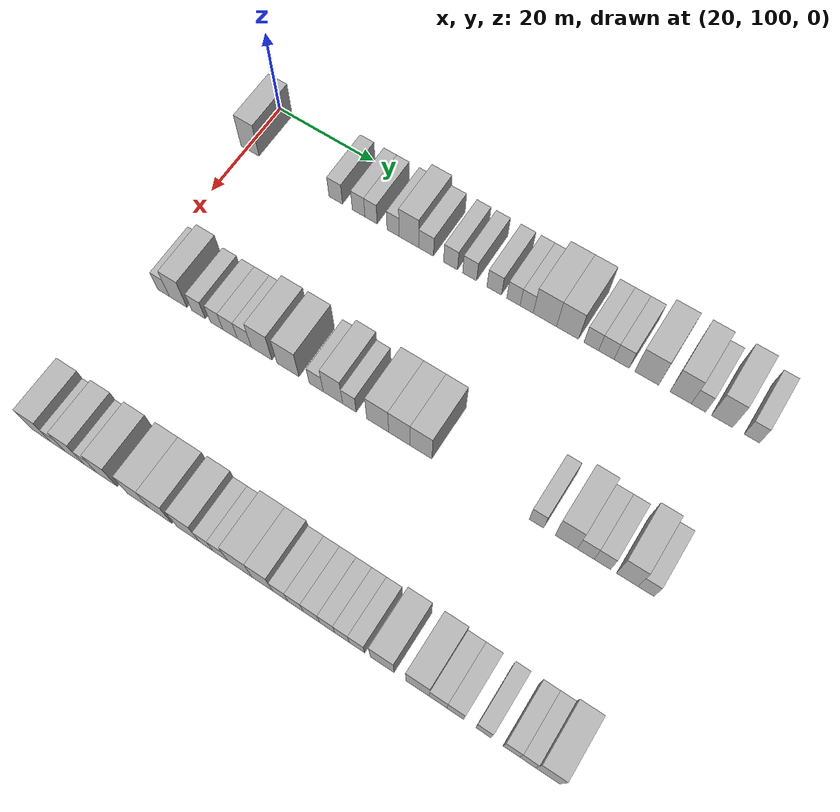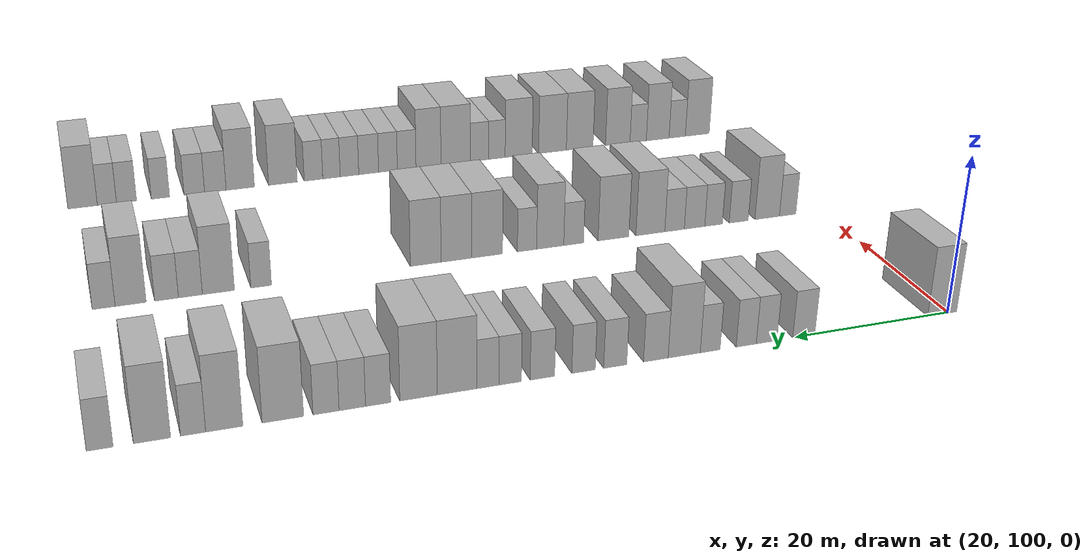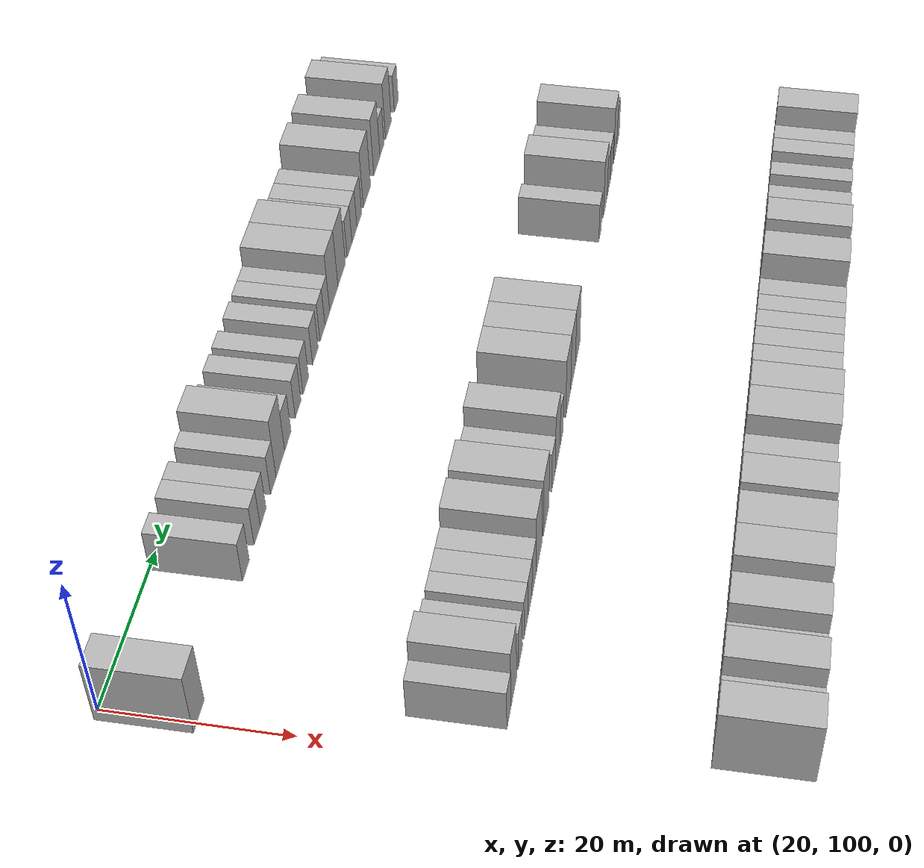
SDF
<sdf version="1.6">
 <world name="default">
  <model name="building_100">
   <static>1</static>
   <pose>25.0000 100.7992 0 0.000000 0.000000 0.000000</pose>
   <link name="link">
    <pose>0 0 4.50 0 0 0</pose>
    <collision name="collision"><geometry><box><size>10.0000 3.8838 9.0000</size></box></geometry></collision>
    <visual name="visual">
     <cast_shadows>0</cast_shadows>
     <geometry><box><size>10.0000 3.8838 9.0000</size></box></geometry>
     <material>
      <script>
       <uri>model://HANNAS_wall/materials/scripts</uri>
       <uri>model://HANNAS_wall/materials/textures</uri>
       <name>vrc/HANNAS_wall</name>
      </script>
     </material>
    </visual>
   </link>
  </model>
  <model name="building_101">
   <static>1</static>
   <pose>25.0000 118.9453 0 0.000000 0.000000 0.000000</pose>
   <link name="link">
    <pose>0 0 3.00 0 0 0</pose>
    <collision name="collision"><geometry><box><size>10.0000 2.8028 6.0000</size></box></geometry></collision>
    <visual name="visual">
     <cast_shadows>0</cast_shadows>
     <geometry><box><size>10.0000 2.8028 6.0000</size></box></geometry>
     <material>
      <script>
       <uri>model://HANNAS_wall/materials/scripts</uri>
       <uri>model://HANNAS_wall/materials/textures</uri>
       <name>vrc/HANNAS_wall</name>
      </script>
     </material>
    </visual>
   </link>
  </model>
  <model name="building_102">
   <static>1</static>
   <pose>25.0000 123.6450 0 0.000000 0.000000 0.000000</pose>
   <link name="link">
    <pose>0 0 3.00 0 0 0</pose>
    <collision name="collision"><geometry><box><size>10.0000 2.5965 6.0000</size></box></geometry></collision>
    <visual name="visual">
     <cast_shadows>0</cast_shadows>
     <geometry><box><size>10.0000 2.5965 6.0000</size></box></geometry>
     <material>
      <script>
       <uri>model://HANNAS_wall/materials/scripts</uri>
       <uri>model://HANNAS_wall/materials/textures</uri>
       <name>vrc/HANNAS_wall</name>
      </script>
     </material>
    </visual>
   </link>
  </model>
  <model name="building_103">
   <static>1</static>
   <pose>25.0000 126.1950 0 0.000000 0.000000 0.000000</pose>
   <link name="link">
    <pose>0 0 3.00 0 0 0</pose>
    <collision name="collision"><geometry><box><size>10.0000 2.5036 6.0000</size></box></geometry></collision>
    <visual name="visual">
     <cast_shadows>0</cast_shadows>
     <geometry><box><size>10.0000 2.5036 6.0000</size></box></geometry>
     <material>
      <script>
       <uri>model://HANNAS_wall/materials/scripts</uri>
       <uri>model://HANNAS_wall/materials/textures</uri>
       <name>vrc/HANNAS_wall</name>
      </script>
     </material>
    </visual>
   </link>
  </model>
  <model name="building_104">
   <static>1</static>
   <pose>25.0000 130.6637 0 0.000000 0.000000 0.000000</pose>
   <link name="link">
    <pose>0 0 3.00 0 0 0</pose>
    <collision name="collision"><geometry><box><size>10.0000 2.4337 6.0000</size></box></geometry></collision>
    <visual name="visual">
     <cast_shadows>0</cast_shadows>
     <geometry><box><size>10.0000 2.4337 6.0000</size></box></geometry>
     <material>
      <script>
       <uri>model://HANNAS_wall/materials/scripts</uri>
       <uri>model://HANNAS_wall/materials/textures</uri>
       <name>vrc/HANNAS_wall</name>
      </script>
     </material>
    </visual>
   </link>
  </model>
  <model name="building_105">
   <static>1</static>
   <pose>25.0000 133.8377 0 0.000000 0.000000 0.000000</pose>
   <link name="link">
    <pose>0 0 4.50 0 0 0</pose>
    <collision name="collision"><geometry><box><size>10.0000 3.9144 9.0000</size></box></geometry></collision>
    <visual name="visual">
     <cast_shadows>0</cast_shadows>
     <geometry><box><size>10.0000 3.9144 9.0000</size></box></geometry>
     <material>
      <script>
       <uri>model://HANNAS_wall/materials/scripts</uri>
       <uri>model://HANNAS_wall/materials/textures</uri>
       <name>vrc/HANNAS_wall</name>
      </script>
     </material>
    </visual>
   </link>
  </model>
  <model name="building_106">
   <static>1</static>
   <pose>25.0000 137.2740 0 0.000000 0.000000 0.000000</pose>
   <link name="link">
    <pose>0 0 3.00 0 0 0</pose>
    <collision name="collision"><geometry><box><size>10.0000 2.9583 6.0000</size></box></geometry></collision>
    <visual name="visual">
     <cast_shadows>0</cast_shadows>
     <geometry><box><size>10.0000 2.9583 6.0000</size></box></geometry>
     <material>
      <script>
       <uri>model://HANNAS_wall/materials/scripts</uri>
       <uri>model://HANNAS_wall/materials/textures</uri>
       <name>vrc/HANNAS_wall</name>
      </script>
     </material>
    </visual>
   </link>
  </model>
  <model name="building_107">
   <static>1</static>
   <pose>25.0000 142.1215 0 0.000000 0.000000 0.000000</pose>
   <link name="link">
    <pose>0 0 3.00 0 0 0</pose>
    <collision name="collision"><geometry><box><size>10.0000 2.7368 6.0000</size></box></geometry></collision>
    <visual name="visual">
     <cast_shadows>0</cast_shadows>
     <geometry><box><size>10.0000 2.7368 6.0000</size></box></geometry>
     <material>
      <script>
       <uri>model://HANNAS_wall/materials/scripts</uri>
       <uri>model://HANNAS_wall/materials/textures</uri>
       <name>vrc/HANNAS_wall</name>
      </script>
     </material>
    </visual>
   </link>
  </model>
  <model name="building_108">
   <static>1</static>
   <pose>25.0000 145.8568 0 0.000000 0.000000 0.000000</pose>
   <link name="link">
    <pose>0 0 3.00 0 0 0</pose>
    <collision name="collision"><geometry><box><size>10.0000 2.7338 6.0000</size></box></geometry></collision>
    <visual name="visual">
     <cast_shadows>0</cast_shadows>
     <geometry><box><size>10.0000 2.7338 6.0000</size></box></geometry>
     <material>
      <script>
       <uri>model://HANNAS_wall/materials/scripts</uri>
       <uri>model://HANNAS_wall/materials/textures</uri>
       <name>vrc/HANNAS_wall</name>
      </script>
     </material>
    </visual>
   </link>
  </model>
  <model name="building_109">
   <static>1</static>
   <pose>25.0000 150.6333 0 0.000000 0.000000 0.000000</pose>
   <link name="link">
    <pose>0 0 3.00 0 0 0</pose>
    <collision name="collision"><geometry><box><size>10.0000 2.8192 6.0000</size></box></geometry></collision>
    <visual name="visual">
     <cast_shadows>0</cast_shadows>
     <geometry><box><size>10.0000 2.8192 6.0000</size></box></geometry>
     <material>
      <script>
       <uri>model://HANNAS_wall/materials/scripts</uri>
       <uri>model://HANNAS_wall/materials/textures</uri>
       <name>vrc/HANNAS_wall</name>
      </script>
     </material>
    </visual>
   </link>
  </model>
  <model name="building_110">
   <static>1</static>
   <pose>25.0000 154.3250 0 0.000000 0.000000 0.000000</pose>
   <link name="link">
    <pose>0 0 3.00 0 0 0</pose>
    <collision name="collision"><geometry><box><size>10.0000 2.5641 6.0000</size></box></geometry></collision>
    <visual name="visual">
     <cast_shadows>0</cast_shadows>
     <geometry><box><size>10.0000 2.5641 6.0000</size></box></geometry>
     <material>
      <script>
       <uri>model://HANNAS_wall/materials/scripts</uri>
       <uri>model://HANNAS_wall/materials/textures</uri>
       <name>vrc/HANNAS_wall</name>
      </script>
     </material>
    </visual>
   </link>
  </model>
  <model name="building_111">
   <static>1</static>
   <pose>25.0000 156.8518 0 0.000000 0.000000 0.000000</pose>
   <link name="link">
    <pose>0 0 3.00 0 0 0</pose>
    <collision name="collision"><geometry><box><size>10.0000 2.4895 6.0000</size></box></geometry></collision>
    <visual name="visual">
     <cast_shadows>0</cast_shadows>
     <geometry><box><size>10.0000 2.4895 6.0000</size></box></geometry>
     <material>
      <script>
       <uri>model://HANNAS_wall/materials/scripts</uri>
       <uri>model://HANNAS_wall/materials/textures</uri>
       <name>vrc/HANNAS_wall</name>
      </script>
     </material>
    </visual>
   </link>
  </model>
  <model name="building_112">
   <static>1</static>
   <pose>25.0000 160.3032 0 0.000000 0.000000 0.000000</pose>
   <link name="link">
    <pose>0 0 4.50 0 0 0</pose>
    <collision name="collision"><geometry><box><size>10.0000 4.4132 9.0000</size></box></geometry></collision>
    <visual name="visual">
     <cast_shadows>0</cast_shadows>
     <geometry><box><size>10.0000 4.4132 9.0000</size></box></geometry>
     <material>
      <script>
       <uri>model://HANNAS_wall/materials/scripts</uri>
       <uri>model://HANNAS_wall/materials/textures</uri>
       <name>vrc/HANNAS_wall</name>
      </script>
     </material>
    </visual>
   </link>
  </model>
  <model name="building_113">
   <static>1</static>
   <pose>25.0000 164.5713 0 0.000000 0.000000 0.000000</pose>
   <link name="link">
    <pose>0 0 4.50 0 0 0</pose>
    <collision name="collision"><geometry><box><size>10.0000 4.1232 9.0000</size></box></geometry></collision>
    <visual name="visual">
     <cast_shadows>0</cast_shadows>
     <geometry><box><size>10.0000 4.1232 9.0000</size></box></geometry>
     <material>
      <script>
       <uri>model://HANNAS_wall/materials/scripts</uri>
       <uri>model://HANNAS_wall/materials/textures</uri>
       <name>vrc/HANNAS_wall</name>
      </script>
     </material>
    </visual>
   </link>
  </model>
  <model name="building_114">
   <static>1</static>
   <pose>25.0000 168.9948 0 0.000000 0.000000 0.000000</pose>
   <link name="link">
    <pose>0 0 3.00 0 0 0</pose>
    <collision name="collision"><geometry><box><size>10.0000 2.7237 6.0000</size></box></geometry></collision>
    <visual name="visual">
     <cast_shadows>0</cast_shadows>
     <geometry><box><size>10.0000 2.7237 6.0000</size></box></geometry>
     <material>
      <script>
       <uri>model://HANNAS_wall/materials/scripts</uri>
       <uri>model://HANNAS_wall/materials/textures</uri>
       <name>vrc/HANNAS_wall</name>
      </script>
     </material>
    </visual>
   </link>
  </model>
  <model name="building_115">
   <static>1</static>
   <pose>25.0000 171.7751 0 0.000000 0.000000 0.000000</pose>
   <link name="link">
    <pose>0 0 3.00 0 0 0</pose>
    <collision name="collision"><geometry><box><size>10.0000 2.8369 6.0000</size></box></geometry></collision>
    <visual name="visual">
     <cast_shadows>0</cast_shadows>
     <geometry><box><size>10.0000 2.8369 6.0000</size></box></geometry>
     <material>
      <script>
       <uri>model://HANNAS_wall/materials/scripts</uri>
       <uri>model://HANNAS_wall/materials/textures</uri>
       <name>vrc/HANNAS_wall</name>
      </script>
     </material>
    </visual>
   </link>
  </model>
  <model name="building_116">
   <static>1</static>
   <pose>25.0000 174.5804 0 0.000000 0.000000 0.000000</pose>
   <link name="link">
    <pose>0 0 3.00 0 0 0</pose>
    <collision name="collision"><geometry><box><size>10.0000 2.7737 6.0000</size></box></geometry></collision>
    <visual name="visual">
     <cast_shadows>0</cast_shadows>
     <geometry><box><size>10.0000 2.7737 6.0000</size></box></geometry>
     <material>
      <script>
       <uri>model://HANNAS_wall/materials/scripts</uri>
       <uri>model://HANNAS_wall/materials/textures</uri>
       <name>vrc/HANNAS_wall</name>
      </script>
     </material>
    </visual>
   </link>
  </model>
  <model name="building_117">
   <static>1</static>
   <pose>25.0000 179.1370 0 0.000000 0.000000 0.000000</pose>
   <link name="link">
    <pose>0 0 4.50 0 0 0</pose>
    <collision name="collision"><geometry><box><size>10.0000 4.3395 9.0000</size></box></geometry></collision>
    <visual name="visual">
     <cast_shadows>0</cast_shadows>
     <geometry><box><size>10.0000 4.3395 9.0000</size></box></geometry>
     <material>
      <script>
       <uri>model://HANNAS_wall/materials/scripts</uri>
       <uri>model://HANNAS_wall/materials/textures</uri>
       <name>vrc/HANNAS_wall</name>
      </script>
     </material>
    </visual>
   </link>
  </model>
  <model name="building_118">
   <static>1</static>
   <pose>25.0000 185.2125 0 0.000000 0.000000 0.000000</pose>
   <link name="link">
    <pose>0 0 4.50 0 0 0</pose>
    <collision name="collision"><geometry><box><size>10.0000 3.8114 9.0000</size></box></geometry></collision>
    <visual name="visual">
     <cast_shadows>0</cast_shadows>
     <geometry><box><size>10.0000 3.8114 9.0000</size></box></geometry>
     <material>
      <script>
       <uri>model://HANNAS_wall/materials/scripts</uri>
       <uri>model://HANNAS_wall/materials/textures</uri>
       <name>vrc/HANNAS_wall</name>
      </script>
     </material>
    </visual>
   </link>
  </model>
  <model name="building_119">
   <static>1</static>
   <pose>25.0000 188.3955 0 0.000000 0.000000 0.000000</pose>
   <link name="link">
    <pose>0 0 3.00 0 0 0</pose>
    <collision name="collision"><geometry><box><size>10.0000 2.5547 6.0000</size></box></geometry></collision>
    <visual name="visual">
     <cast_shadows>0</cast_shadows>
     <geometry><box><size>10.0000 2.5547 6.0000</size></box></geometry>
     <material>
      <script>
       <uri>model://HANNAS_wall/materials/scripts</uri>
       <uri>model://HANNAS_wall/materials/textures</uri>
       <name>vrc/HANNAS_wall</name>
      </script>
     </material>
    </visual>
   </link>
  </model>
  <model name="building_120">
   <static>1</static>
   <pose>25.0000 192.5341 0 0.000000 0.000000 0.000000</pose>
   <link name="link">
    <pose>0 0 4.50 0 0 0</pose>
    <collision name="collision"><geometry><box><size>10.0000 3.7225 9.0000</size></box></geometry></collision>
    <visual name="visual">
     <cast_shadows>0</cast_shadows>
     <geometry><box><size>10.0000 3.7225 9.0000</size></box></geometry>
     <material>
      <script>
       <uri>model://HANNAS_wall/materials/scripts</uri>
       <uri>model://HANNAS_wall/materials/textures</uri>
       <name>vrc/HANNAS_wall</name>
      </script>
     </material>
    </visual>
   </link>
  </model>
  <model name="building_121">
   <static>1</static>
   <pose>25.0000 197.7172 0 0.000000 0.000000 0.000000</pose>
   <link name="link">
    <pose>0 0 3.00 0 0 0</pose>
    <collision name="collision"><geometry><box><size>10.0000 2.6436 6.0000</size></box></geometry></collision>
    <visual name="visual">
     <cast_shadows>0</cast_shadows>
     <geometry><box><size>10.0000 2.6436 6.0000</size></box></geometry>
     <material>
      <script>
       <uri>model://HANNAS_wall/materials/scripts</uri>
       <uri>model://HANNAS_wall/materials/textures</uri>
       <name>vrc/HANNAS_wall</name>
      </script>
     </material>
    </visual>
   </link>
  </model>
  <model name="building_223">
   <static>1</static>
   <pose>55.0000 105.1347 0 0.000000 0.000000 0.000000</pose>
   <link name="link">
    <pose>0 0 3.00 0 0 0</pose>
    <collision name="collision"><geometry><box><size>10.0000 2.4431 6.0000</size></box></geometry></collision>
    <visual name="visual">
     <cast_shadows>0</cast_shadows>
     <geometry><box><size>10.0000 2.4431 6.0000</size></box></geometry>
     <material>
      <script>
       <uri>model://HANNAS_wall/materials/scripts</uri>
       <uri>model://HANNAS_wall/materials/textures</uri>
       <name>vrc/HANNAS_wall</name>
      </script>
     </material>
    </visual>
   </link>
  </model>
  <model name="building_224">
   <static>1</static>
   <pose>55.0000 108.1707 0 0.000000 0.000000 0.000000</pose>
   <link name="link">
    <pose>0 0 4.50 0 0 0</pose>
    <collision name="collision"><geometry><box><size>10.0000 3.6289 9.0000</size></box></geometry></collision>
    <visual name="visual">
     <cast_shadows>0</cast_shadows>
     <geometry><box><size>10.0000 3.6289 9.0000</size></box></geometry>
     <material>
      <script>
       <uri>model://HANNAS_wall/materials/scripts</uri>
       <uri>model://HANNAS_wall/materials/textures</uri>
       <name>vrc/HANNAS_wall</name>
      </script>
     </material>
    </visual>
   </link>
  </model>
  <model name="building_225">
   <static>1</static>
   <pose>55.0000 112.3781 0 0.000000 0.000000 0.000000</pose>
   <link name="link">
    <pose>0 0 3.00 0 0 0</pose>
    <collision name="collision"><geometry><box><size>10.0000 2.7859 6.0000</size></box></geometry></collision>
    <visual name="visual">
     <cast_shadows>0</cast_shadows>
     <geometry><box><size>10.0000 2.7859 6.0000</size></box></geometry>
     <material>
      <script>
       <uri>model://HANNAS_wall/materials/scripts</uri>
       <uri>model://HANNAS_wall/materials/textures</uri>
       <name>vrc/HANNAS_wall</name>
      </script>
     </material>
    </visual>
   </link>
  </model>
  <model name="building_226">
   <static>1</static>
   <pose>55.0000 116.0443 0 0.000000 0.000000 0.000000</pose>
   <link name="link">
    <pose>0 0 3.00 0 0 0</pose>
    <collision name="collision"><geometry><box><size>10.0000 2.5465 6.0000</size></box></geometry></collision>
    <visual name="visual">
     <cast_shadows>0</cast_shadows>
     <geometry><box><size>10.0000 2.5465 6.0000</size></box></geometry>
     <material>
      <script>
       <uri>model://HANNAS_wall/materials/scripts</uri>
       <uri>model://HANNAS_wall/materials/textures</uri>
       <name>vrc/HANNAS_wall</name>
      </script>
     </material>
    </visual>
   </link>
  </model>
  <model name="building_227">
   <static>1</static>
   <pose>55.0000 118.7913 0 0.000000 0.000000 0.000000</pose>
   <link name="link">
    <pose>0 0 3.00 0 0 0</pose>
    <collision name="collision"><geometry><box><size>10.0000 2.9474 6.0000</size></box></geometry></collision>
    <visual name="visual">
     <cast_shadows>0</cast_shadows>
     <geometry><box><size>10.0000 2.9474 6.0000</size></box></geometry>
     <material>
      <script>
       <uri>model://HANNAS_wall/materials/scripts</uri>
       <uri>model://HANNAS_wall/materials/textures</uri>
       <name>vrc/HANNAS_wall</name>
      </script>
     </material>
    </visual>
   </link>
  </model>
  <model name="building_228">
   <static>1</static>
   <pose>55.0000 121.6627 0 0.000000 0.000000 0.000000</pose>
   <link name="link">
    <pose>0 0 3.00 0 0 0</pose>
    <collision name="collision"><geometry><box><size>10.0000 2.7953 6.0000</size></box></geometry></collision>
    <visual name="visual">
     <cast_shadows>0</cast_shadows>
     <geometry><box><size>10.0000 2.7953 6.0000</size></box></geometry>
     <material>
      <script>
       <uri>model://HANNAS_wall/materials/scripts</uri>
       <uri>model://HANNAS_wall/materials/textures</uri>
       <name>vrc/HANNAS_wall</name>
      </script>
     </material>
    </visual>
   </link>
  </model>
  <model name="building_229">
   <static>1</static>
   <pose>55.0000 125.1063 0 0.000000 0.000000 0.000000</pose>
   <link name="link">
    <pose>0 0 4.50 0 0 0</pose>
    <collision name="collision"><geometry><box><size>10.0000 4.0919 9.0000</size></box></geometry></collision>
    <visual name="visual">
     <cast_shadows>0</cast_shadows>
     <geometry><box><size>10.0000 4.0919 9.0000</size></box></geometry>
     <material>
      <script>
       <uri>model://HANNAS_wall/materials/scripts</uri>
       <uri>model://HANNAS_wall/materials/textures</uri>
       <name>vrc/HANNAS_wall</name>
      </script>
     </material>
    </visual>
   </link>
  </model>
  <model name="building_230">
   <static>1</static>
   <pose>55.0000 130.3041 0 0.000000 0.000000 0.000000</pose>
   <link name="link">
    <pose>0 0 4.50 0 0 0</pose>
    <collision name="collision"><geometry><box><size>10.0000 4.3039 9.0000</size></box></geometry></collision>
    <visual name="visual">
     <cast_shadows>0</cast_shadows>
     <geometry><box><size>10.0000 4.3039 9.0000</size></box></geometry>
     <material>
      <script>
       <uri>model://HANNAS_wall/materials/scripts</uri>
       <uri>model://HANNAS_wall/materials/textures</uri>
       <name>vrc/HANNAS_wall</name>
      </script>
     </material>
    </visual>
   </link>
  </model>
  <model name="building_231">
   <static>1</static>
   <pose>55.0000 135.8224 0 0.000000 0.000000 0.000000</pose>
   <link name="link">
    <pose>0 0 3.00 0 0 0</pose>
    <collision name="collision"><geometry><box><size>10.0000 2.7327 6.0000</size></box></geometry></collision>
    <visual name="visual">
     <cast_shadows>0</cast_shadows>
     <geometry><box><size>10.0000 2.7327 6.0000</size></box></geometry>
     <material>
      <script>
       <uri>model://HANNAS_wall/materials/scripts</uri>
       <uri>model://HANNAS_wall/materials/textures</uri>
       <name>vrc/HANNAS_wall</name>
      </script>
     </material>
    </visual>
   </link>
  </model>
  <model name="building_232">
   <static>1</static>
   <pose>55.0000 139.0398 0 0.000000 0.000000 0.000000</pose>
   <link name="link">
    <pose>0 0 4.50 0 0 0</pose>
    <collision name="collision"><geometry><box><size>10.0000 3.7021 9.0000</size></box></geometry></collision>
    <visual name="visual">
     <cast_shadows>0</cast_shadows>
     <geometry><box><size>10.0000 3.7021 9.0000</size></box></geometry>
     <material>
      <script>
       <uri>model://HANNAS_wall/materials/scripts</uri>
       <uri>model://HANNAS_wall/materials/textures</uri>
       <name>vrc/HANNAS_wall</name>
      </script>
     </material>
    </visual>
   </link>
  </model>
  <model name="building_233">
   <static>1</static>
   <pose>55.0000 142.1880 0 0.000000 0.000000 0.000000</pose>
   <link name="link">
    <pose>0 0 3.00 0 0 0</pose>
    <collision name="collision"><geometry><box><size>10.0000 2.5942 6.0000</size></box></geometry></collision>
    <visual name="visual">
     <cast_shadows>0</cast_shadows>
     <geometry><box><size>10.0000 2.5942 6.0000</size></box></geometry>
     <material>
      <script>
       <uri>model://HANNAS_wall/materials/scripts</uri>
       <uri>model://HANNAS_wall/materials/textures</uri>
       <name>vrc/HANNAS_wall</name>
      </script>
     </material>
    </visual>
   </link>
  </model>
  <model name="building_234">
   <static>1</static>
   <pose>55.0000 147.5506 0 0.000000 0.000000 0.000000</pose>
   <link name="link">
    <pose>0 0 4.50 0 0 0</pose>
    <collision name="collision"><geometry><box><size>10.0000 4.1310 9.0000</size></box></geometry></collision>
    <visual name="visual">
     <cast_shadows>0</cast_shadows>
     <geometry><box><size>10.0000 4.1310 9.0000</size></box></geometry>
     <material>
      <script>
       <uri>model://HANNAS_wall/materials/scripts</uri>
       <uri>model://HANNAS_wall/materials/textures</uri>
       <name>vrc/HANNAS_wall</name>
      </script>
     </material>
    </visual>
   </link>
  </model>
  <model name="building_235">
   <static>1</static>
   <pose>55.0000 151.6211 0 0.000000 0.000000 0.000000</pose>
   <link name="link">
    <pose>0 0 4.50 0 0 0</pose>
    <collision name="collision"><geometry><box><size>10.0000 4.0101 9.0000</size></box></geometry></collision>
    <visual name="visual">
     <cast_shadows>0</cast_shadows>
     <geometry><box><size>10.0000 4.0101 9.0000</size></box></geometry>
     <material>
      <script>
       <uri>model://HANNAS_wall/materials/scripts</uri>
       <uri>model://HANNAS_wall/materials/textures</uri>
       <name>vrc/HANNAS_wall</name>
      </script>
     </material>
    </visual>
   </link>
  </model>
  <model name="building_236">
   <static>1</static>
   <pose>55.0000 155.6269 0 0.000000 0.000000 0.000000</pose>
   <link name="link">
    <pose>0 0 4.50 0 0 0</pose>
    <collision name="collision"><geometry><box><size>10.0000 4.0014 9.0000</size></box></geometry></collision>
    <visual name="visual">
     <cast_shadows>0</cast_shadows>
     <geometry><box><size>10.0000 4.0014 9.0000</size></box></geometry>
     <material>
      <script>
       <uri>model://HANNAS_wall/materials/scripts</uri>
       <uri>model://HANNAS_wall/materials/textures</uri>
       <name>vrc/HANNAS_wall</name>
      </script>
     </material>
    </visual>
   </link>
  </model>
  <model name="building_237">
   <static>1</static>
   <pose>55.0000 176.4180 0 0.000000 0.000000 0.000000</pose>
   <link name="link">
    <pose>0 0 3.00 0 0 0</pose>
    <collision name="collision"><geometry><box><size>10.0000 2.5270 6.0000</size></box></geometry></collision>
    <visual name="visual">
     <cast_shadows>0</cast_shadows>
     <geometry><box><size>10.0000 2.5270 6.0000</size></box></geometry>
     <material>
      <script>
       <uri>model://HANNAS_wall/materials/scripts</uri>
       <uri>model://HANNAS_wall/materials/textures</uri>
       <name>vrc/HANNAS_wall</name>
      </script>
     </material>
    </visual>
   </link>
  </model>
  <model name="building_238">
   <static>1</static>
   <pose>55.0000 181.6133 0 0.000000 0.000000 0.000000</pose>
   <link name="link">
    <pose>0 0 4.50 0 0 0</pose>
    <collision name="collision"><geometry><box><size>10.0000 3.8635 9.0000</size></box></geometry></collision>
    <visual name="visual">
     <cast_shadows>0</cast_shadows>
     <geometry><box><size>10.0000 3.8635 9.0000</size></box></geometry>
     <material>
      <script>
       <uri>model://HANNAS_wall/materials/scripts</uri>
       <uri>model://HANNAS_wall/materials/textures</uri>
       <name>vrc/HANNAS_wall</name>
      </script>
     </material>
    </visual>
   </link>
  </model>
  <model name="building_239">
   <static>1</static>
   <pose>55.0000 184.9808 0 0.000000 0.000000 0.000000</pose>
   <link name="link">
    <pose>0 0 3.00 0 0 0</pose>
    <collision name="collision"><geometry><box><size>10.0000 2.8714 6.0000</size></box></geometry></collision>
    <visual name="visual">
     <cast_shadows>0</cast_shadows>
     <geometry><box><size>10.0000 2.8714 6.0000</size></box></geometry>
     <material>
      <script>
       <uri>model://HANNAS_wall/materials/scripts</uri>
       <uri>model://HANNAS_wall/materials/textures</uri>
       <name>vrc/HANNAS_wall</name>
      </script>
     </material>
    </visual>
   </link>
  </model>
  <model name="building_240">
   <static>1</static>
   <pose>55.0000 187.8262 0 0.000000 0.000000 0.000000</pose>
   <link name="link">
    <pose>0 0 3.00 0 0 0</pose>
    <collision name="collision"><geometry><box><size>10.0000 2.8194 6.0000</size></box></geometry></collision>
    <visual name="visual">
     <cast_shadows>0</cast_shadows>
     <geometry><box><size>10.0000 2.8194 6.0000</size></box></geometry>
     <material>
      <script>
       <uri>model://HANNAS_wall/materials/scripts</uri>
       <uri>model://HANNAS_wall/materials/textures</uri>
       <name>vrc/HANNAS_wall</name>
      </script>
     </material>
    </visual>
   </link>
  </model>
  <model name="building_241">
   <static>1</static>
   <pose>55.0000 192.0515 0 0.000000 0.000000 0.000000</pose>
   <link name="link">
    <pose>0 0 4.50 0 0 0</pose>
    <collision name="collision"><geometry><box><size>10.0000 3.6312 9.0000</size></box></geometry></collision>
    <visual name="visual">
     <cast_shadows>0</cast_shadows>
     <geometry><box><size>10.0000 3.6312 9.0000</size></box></geometry>
     <material>
      <script>
       <uri>model://HANNAS_wall/materials/scripts</uri>
       <uri>model://HANNAS_wall/materials/textures</uri>
       <name>vrc/HANNAS_wall</name>
      </script>
     </material>
    </visual>
   </link>
  </model>
  <model name="building_242">
   <static>1</static>
   <pose>55.0000 195.2023 0 0.000000 0.000000 0.000000</pose>
   <link name="link">
    <pose>0 0 3.00 0 0 0</pose>
    <collision name="collision"><geometry><box><size>10.0000 2.6704 6.0000</size></box></geometry></collision>
    <visual name="visual">
     <cast_shadows>0</cast_shadows>
     <geometry><box><size>10.0000 2.6704 6.0000</size></box></geometry>
     <material>
      <script>
       <uri>model://HANNAS_wall/materials/scripts</uri>
       <uri>model://HANNAS_wall/materials/textures</uri>
       <name>vrc/HANNAS_wall</name>
      </script>
     </material>
    </visual>
   </link>
  </model>
  <model name="building_358">
   <static>1</static>
   <pose>85.0000 104.5652 0 0.000000 0.000000 0.000000</pose>
   <link name="link">
    <pose>0 0 4.50 0 0 0</pose>
    <collision name="collision"><geometry><box><size>10.0000 3.9607 9.0000</size></box></geometry></collision>
    <visual name="visual">
     <cast_shadows>0</cast_shadows>
     <geometry><box><size>10.0000 3.9607 9.0000</size></box></geometry>
     <material>
      <script>
       <uri>model://HANNAS_wall/materials/scripts</uri>
       <uri>model://HANNAS_wall/materials/textures</uri>
       <name>vrc/HANNAS_wall</name>
      </script>
     </material>
    </visual>
   </link>
  </model>
  <model name="building_359">
   <static>1</static>
   <pose>85.0000 107.8893 0 0.000000 0.000000 0.000000</pose>
   <link name="link">
    <pose>0 0 3.00 0 0 0</pose>
    <collision name="collision"><geometry><box><size>10.0000 2.6874 6.0000</size></box></geometry></collision>
    <visual name="visual">
     <cast_shadows>0</cast_shadows>
     <geometry><box><size>10.0000 2.6874 6.0000</size></box></geometry>
     <material>
      <script>
       <uri>model://HANNAS_wall/materials/scripts</uri>
       <uri>model://HANNAS_wall/materials/textures</uri>
       <name>vrc/HANNAS_wall</name>
      </script>
     </material>
    </visual>
   </link>
  </model>
  <model name="building_360">
   <static>1</static>
   <pose>85.0000 111.0969 0 0.000000 0.000000 0.000000</pose>
   <link name="link">
    <pose>0 0 4.50 0 0 0</pose>
    <collision name="collision"><geometry><box><size>10.0000 3.7279 9.0000</size></box></geometry></collision>
    <visual name="visual">
     <cast_shadows>0</cast_shadows>
     <geometry><box><size>10.0000 3.7279 9.0000</size></box></geometry>
     <material>
      <script>
       <uri>model://HANNAS_wall/materials/scripts</uri>
       <uri>model://HANNAS_wall/materials/textures</uri>
       <name>vrc/HANNAS_wall</name>
      </script>
     </material>
    </visual>
   </link>
  </model>
  <model name="building_361">
   <static>1</static>
   <pose>85.0000 114.2854 0 0.000000 0.000000 0.000000</pose>
   <link name="link">
    <pose>0 0 3.00 0 0 0</pose>
    <collision name="collision"><geometry><box><size>10.0000 2.6492 6.0000</size></box></geometry></collision>
    <visual name="visual">
     <cast_shadows>0</cast_shadows>
     <geometry><box><size>10.0000 2.6492 6.0000</size></box></geometry>
     <material>
      <script>
       <uri>model://HANNAS_wall/materials/scripts</uri>
       <uri>model://HANNAS_wall/materials/textures</uri>
       <name>vrc/HANNAS_wall</name>
      </script>
     </material>
    </visual>
   </link>
  </model>
  <model name="building_362">
   <static>1</static>
   <pose>85.0000 117.5855 0 0.000000 0.000000 0.000000</pose>
   <link name="link">
    <pose>0 0 4.50 0 0 0</pose>
    <collision name="collision"><geometry><box><size>10.0000 3.9510 9.0000</size></box></geometry></collision>
    <visual name="visual">
     <cast_shadows>0</cast_shadows>
     <geometry><box><size>10.0000 3.9510 9.0000</size></box></geometry>
     <material>
      <script>
       <uri>model://HANNAS_wall/materials/scripts</uri>
       <uri>model://HANNAS_wall/materials/textures</uri>
       <name>vrc/HANNAS_wall</name>
      </script>
     </material>
    </visual>
   </link>
  </model>
  <model name="building_363">
   <static>1</static>
   <pose>85.0000 123.6837 0 0.000000 0.000000 0.000000</pose>
   <link name="link">
    <pose>0 0 4.50 0 0 0</pose>
    <collision name="collision"><geometry><box><size>10.0000 4.2453 9.0000</size></box></geometry></collision>
    <visual name="visual">
     <cast_shadows>0</cast_shadows>
     <geometry><box><size>10.0000 4.2453 9.0000</size></box></geometry>
     <material>
      <script>
       <uri>model://HANNAS_wall/materials/scripts</uri>
       <uri>model://HANNAS_wall/materials/textures</uri>
       <name>vrc/HANNAS_wall</name>
      </script>
     </material>
    </visual>
   </link>
  </model>
  <model name="building_364">
   <static>1</static>
   <pose>85.0000 127.9911 0 0.000000 0.000000 0.000000</pose>
   <link name="link">
    <pose>0 0 4.50 0 0 0</pose>
    <collision name="collision"><geometry><box><size>10.0000 4.3695 9.0000</size></box></geometry></collision>
    <visual name="visual">
     <cast_shadows>0</cast_shadows>
     <geometry><box><size>10.0000 4.3695 9.0000</size></box></geometry>
     <material>
      <script>
       <uri>model://HANNAS_wall/materials/scripts</uri>
       <uri>model://HANNAS_wall/materials/textures</uri>
       <name>vrc/HANNAS_wall</name>
      </script>
     </material>
    </visual>
   </link>
  </model>
  <model name="building_365">
   <static>1</static>
   <pose>85.0000 133.2734 0 0.000000 0.000000 0.000000</pose>
   <link name="link">
    <pose>0 0 4.50 0 0 0</pose>
    <collision name="collision"><geometry><box><size>10.0000 4.1951 9.0000</size></box></geometry></collision>
    <visual name="visual">
     <cast_shadows>0</cast_shadows>
     <geometry><box><size>10.0000 4.1951 9.0000</size></box></geometry>
     <material>
      <script>
       <uri>model://HANNAS_wall/materials/scripts</uri>
       <uri>model://HANNAS_wall/materials/textures</uri>
       <name>vrc/HANNAS_wall</name>
      </script>
     </material>
    </visual>
   </link>
  </model>
  <model name="building_366">
   <static>1</static>
   <pose>85.0000 136.6403 0 0.000000 0.000000 0.000000</pose>
   <link name="link">
    <pose>0 0 3.00 0 0 0</pose>
    <collision name="collision"><geometry><box><size>10.0000 2.5387 6.0000</size></box></geometry></collision>
    <visual name="visual">
     <cast_shadows>0</cast_shadows>
     <geometry><box><size>10.0000 2.5387 6.0000</size></box></geometry>
     <material>
      <script>
       <uri>model://HANNAS_wall/materials/scripts</uri>
       <uri>model://HANNAS_wall/materials/textures</uri>
       <name>vrc/HANNAS_wall</name>
      </script>
     </material>
    </visual>
   </link>
  </model>
  <model name="building_367">
   <static>1</static>
   <pose>85.0000 139.3126 0 0.000000 0.000000 0.000000</pose>
   <link name="link">
    <pose>0 0 3.00 0 0 0</pose>
    <collision name="collision"><geometry><box><size>10.0000 2.8058 6.0000</size></box></geometry></collision>
    <visual name="visual">
     <cast_shadows>0</cast_shadows>
     <geometry><box><size>10.0000 2.8058 6.0000</size></box></geometry>
     <material>
      <script>
       <uri>model://HANNAS_wall/materials/scripts</uri>
       <uri>model://HANNAS_wall/materials/textures</uri>
       <name>vrc/HANNAS_wall</name>
      </script>
     </material>
    </visual>
   </link>
  </model>
  <model name="building_368">
   <static>1</static>
   <pose>85.0000 142.9434 0 0.000000 0.000000 0.000000</pose>
   <link name="link">
    <pose>0 0 4.50 0 0 0</pose>
    <collision name="collision"><geometry><box><size>10.0000 4.4559 9.0000</size></box></geometry></collision>
    <visual name="visual">
     <cast_shadows>0</cast_shadows>
     <geometry><box><size>10.0000 4.4559 9.0000</size></box></geometry>
     <material>
      <script>
       <uri>model://HANNAS_wall/materials/scripts</uri>
       <uri>model://HANNAS_wall/materials/textures</uri>
       <name>vrc/HANNAS_wall</name>
      </script>
     </material>
    </visual>
   </link>
  </model>
  <model name="building_369">
   <static>1</static>
   <pose>85.0000 147.0467 0 0.000000 0.000000 0.000000</pose>
   <link name="link">
    <pose>0 0 4.50 0 0 0</pose>
    <collision name="collision"><geometry><box><size>10.0000 3.7507 9.0000</size></box></geometry></collision>
    <visual name="visual">
     <cast_shadows>0</cast_shadows>
     <geometry><box><size>10.0000 3.7507 9.0000</size></box></geometry>
     <material>
      <script>
       <uri>model://HANNAS_wall/materials/scripts</uri>
       <uri>model://HANNAS_wall/materials/textures</uri>
       <name>vrc/HANNAS_wall</name>
      </script>
     </material>
    </visual>
   </link>
  </model>
  <model name="building_370">
   <static>1</static>
   <pose>85.0000 150.3084 0 0.000000 0.000000 0.000000</pose>
   <link name="link">
    <pose>0 0 3.00 0 0 0</pose>
    <collision name="collision"><geometry><box><size>10.0000 2.7728 6.0000</size></box></geometry></collision>
    <visual name="visual">
     <cast_shadows>0</cast_shadows>
     <geometry><box><size>10.0000 2.7728 6.0000</size></box></geometry>
     <material>
      <script>
       <uri>model://HANNAS_wall/materials/scripts</uri>
       <uri>model://HANNAS_wall/materials/textures</uri>
       <name>vrc/HANNAS_wall</name>
      </script>
     </material>
    </visual>
   </link>
  </model>
  <model name="building_371">
   <static>1</static>
   <pose>85.0000 153.0854 0 0.000000 0.000000 0.000000</pose>
   <link name="link">
    <pose>0 0 3.00 0 0 0</pose>
    <collision name="collision"><geometry><box><size>10.0000 2.7812 6.0000</size></box></geometry></collision>
    <visual name="visual">
     <cast_shadows>0</cast_shadows>
     <geometry><box><size>10.0000 2.7812 6.0000</size></box></geometry>
     <material>
      <script>
       <uri>model://HANNAS_wall/materials/scripts</uri>
       <uri>model://HANNAS_wall/materials/textures</uri>
       <name>vrc/HANNAS_wall</name>
      </script>
     </material>
    </visual>
   </link>
  </model>
  <model name="building_372">
   <static>1</static>
   <pose>85.0000 155.9319 0 0.000000 0.000000 0.000000</pose>
   <link name="link">
    <pose>0 0 3.00 0 0 0</pose>
    <collision name="collision"><geometry><box><size>10.0000 2.9118 6.0000</size></box></geometry></collision>
    <visual name="visual">
     <cast_shadows>0</cast_shadows>
     <geometry><box><size>10.0000 2.9118 6.0000</size></box></geometry>
     <material>
      <script>
       <uri>model://HANNAS_wall/materials/scripts</uri>
       <uri>model://HANNAS_wall/materials/textures</uri>
       <name>vrc/HANNAS_wall</name>
      </script>
     </material>
    </visual>
   </link>
  </model>
  <model name="building_373">
   <static>1</static>
   <pose>85.0000 158.7390 0 0.000000 0.000000 0.000000</pose>
   <link name="link">
    <pose>0 0 3.00 0 0 0</pose>
    <collision name="collision"><geometry><box><size>10.0000 2.7023 6.0000</size></box></geometry></collision>
    <visual name="visual">
     <cast_shadows>0</cast_shadows>
     <geometry><box><size>10.0000 2.7023 6.0000</size></box></geometry>
     <material>
      <script>
       <uri>model://HANNAS_wall/materials/scripts</uri>
       <uri>model://HANNAS_wall/materials/textures</uri>
       <name>vrc/HANNAS_wall</name>
      </script>
     </material>
    </visual>
   </link>
  </model>
  <model name="building_374">
   <static>1</static>
   <pose>85.0000 161.3520 0 0.000000 0.000000 0.000000</pose>
   <link name="link">
    <pose>0 0 3.00 0 0 0</pose>
    <collision name="collision"><geometry><box><size>10.0000 2.5238 6.0000</size></box></geometry></collision>
    <visual name="visual">
     <cast_shadows>0</cast_shadows>
     <geometry><box><size>10.0000 2.5238 6.0000</size></box></geometry>
     <material>
      <script>
       <uri>model://HANNAS_wall/materials/scripts</uri>
       <uri>model://HANNAS_wall/materials/textures</uri>
       <name>vrc/HANNAS_wall</name>
      </script>
     </material>
    </visual>
   </link>
  </model>
  <model name="building_375">
   <static>1</static>
   <pose>85.0000 163.9538 0 0.000000 0.000000 0.000000</pose>
   <link name="link">
    <pose>0 0 3.00 0 0 0</pose>
    <collision name="collision"><geometry><box><size>10.0000 2.6797 6.0000</size></box></geometry></collision>
    <visual name="visual">
     <cast_shadows>0</cast_shadows>
     <geometry><box><size>10.0000 2.6797 6.0000</size></box></geometry>
     <material>
      <script>
       <uri>model://HANNAS_wall/materials/scripts</uri>
       <uri>model://HANNAS_wall/materials/textures</uri>
       <name>vrc/HANNAS_wall</name>
      </script>
     </material>
    </visual>
   </link>
  </model>
  <model name="building_376">
   <static>1</static>
   <pose>85.0000 168.3356 0 0.000000 0.000000 0.000000</pose>
   <link name="link">
    <pose>0 0 4.50 0 0 0</pose>
    <collision name="collision"><geometry><box><size>10.0000 4.0839 9.0000</size></box></geometry></collision>
    <visual name="visual">
     <cast_shadows>0</cast_shadows>
     <geometry><box><size>10.0000 4.0839 9.0000</size></box></geometry>
     <material>
      <script>
       <uri>model://HANNAS_wall/materials/scripts</uri>
       <uri>model://HANNAS_wall/materials/textures</uri>
       <name>vrc/HANNAS_wall</name>
      </script>
     </material>
    </visual>
   </link>
  </model>
  <model name="building_377">
   <static>1</static>
   <pose>85.0000 174.3611 0 0.000000 0.000000 0.000000</pose>
   <link name="link">
    <pose>0 0 4.50 0 0 0</pose>
    <collision name="collision"><geometry><box><size>10.0000 3.9671 9.0000</size></box></geometry></collision>
    <visual name="visual">
     <cast_shadows>0</cast_shadows>
     <geometry><box><size>10.0000 3.9671 9.0000</size></box></geometry>
     <material>
      <script>
       <uri>model://HANNAS_wall/materials/scripts</uri>
       <uri>model://HANNAS_wall/materials/textures</uri>
       <name>vrc/HANNAS_wall</name>
      </script>
     </material>
    </visual>
   </link>
  </model>
  <model name="building_378">
   <static>1</static>
   <pose>85.0000 177.8415 0 0.000000 0.000000 0.000000</pose>
   <link name="link">
    <pose>0 0 3.00 0 0 0</pose>
    <collision name="collision"><geometry><box><size>10.0000 2.9938 6.0000</size></box></geometry></collision>
    <visual name="visual">
     <cast_shadows>0</cast_shadows>
     <geometry><box><size>10.0000 2.9938 6.0000</size></box></geometry>
     <material>
      <script>
       <uri>model://HANNAS_wall/materials/scripts</uri>
       <uri>model://HANNAS_wall/materials/textures</uri>
       <name>vrc/HANNAS_wall</name>
      </script>
     </material>
    </visual>
   </link>
  </model>
  <model name="building_379">
   <static>1</static>
   <pose>85.0000 180.7528 0 0.000000 0.000000 0.000000</pose>
   <link name="link">
    <pose>0 0 3.00 0 0 0</pose>
    <collision name="collision"><geometry><box><size>10.0000 2.8288 6.0000</size></box></geometry></collision>
    <visual name="visual">
     <cast_shadows>0</cast_shadows>
     <geometry><box><size>10.0000 2.8288 6.0000</size></box></geometry>
     <material>
      <script>
       <uri>model://HANNAS_wall/materials/scripts</uri>
       <uri>model://HANNAS_wall/materials/textures</uri>
       <name>vrc/HANNAS_wall</name>
      </script>
     </material>
    </visual>
   </link>
  </model>
  <model name="building_380">
   <static>1</static>
   <pose>85.0000 185.4126 0 0.000000 0.000000 0.000000</pose>
   <link name="link">
    <pose>0 0 3.00 0 0 0</pose>
    <collision name="collision"><geometry><box><size>10.0000 2.4908 6.0000</size></box></geometry></collision>
    <visual name="visual">
     <cast_shadows>0</cast_shadows>
     <geometry><box><size>10.0000 2.4908 6.0000</size></box></geometry>
     <material>
      <script>
       <uri>model://HANNAS_wall/materials/scripts</uri>
       <uri>model://HANNAS_wall/materials/textures</uri>
       <name>vrc/HANNAS_wall</name>
      </script>
     </material>
    </visual>
   </link>
  </model>
  <model name="building_381">
   <static>1</static>
   <pose>85.0000 190.0038 0 0.000000 0.000000 0.000000</pose>
   <link name="link">
    <pose>0 0 3.00 0 0 0</pose>
    <collision name="collision"><geometry><box><size>10.0000 2.6917 6.0000</size></box></geometry></collision>
    <visual name="visual">
     <cast_shadows>0</cast_shadows>
     <geometry><box><size>10.0000 2.6917 6.0000</size></box></geometry>
     <material>
      <script>
       <uri>model://HANNAS_wall/materials/scripts</uri>
       <uri>model://HANNAS_wall/materials/textures</uri>
       <name>vrc/HANNAS_wall</name>
      </script>
     </material>
    </visual>
   </link>
  </model>
  <model name="building_382">
   <static>1</static>
   <pose>85.0000 192.6303 0 0.000000 0.000000 0.000000</pose>
   <link name="link">
    <pose>0 0 3.00 0 0 0</pose>
    <collision name="collision"><geometry><box><size>10.0000 2.5614 6.0000</size></box></geometry></collision>
    <visual name="visual">
     <cast_shadows>0</cast_shadows>
     <geometry><box><size>10.0000 2.5614 6.0000</size></box></geometry>
     <material>
      <script>
       <uri>model://HANNAS_wall/materials/scripts</uri>
       <uri>model://HANNAS_wall/materials/textures</uri>
       <name>vrc/HANNAS_wall</name>
      </script>
     </material>
    </visual>
   </link>
  </model>
  <model name="building_383">
   <static>1</static>
   <pose>85.0000 195.8716 0 0.000000 0.000000 0.000000</pose>
   <link name="link">
    <pose>0 0 4.50 0 0 0</pose>
    <collision name="collision"><geometry><box><size>10.0000 3.9210 9.0000</size></box></geometry></collision>
    <visual name="visual">
     <cast_shadows>0</cast_shadows>
     <geometry><box><size>10.0000 3.9210 9.0000</size></box></geometry>
     <material>
      <script>
       <uri>model://HANNAS_wall/materials/scripts</uri>
       <uri>model://HANNAS_wall/materials/textures</uri>
       <name>vrc/HANNAS_wall</name>
      </script>
     </material>
    </visual>
   </link>
  </model>
 </world>
</sdf>
